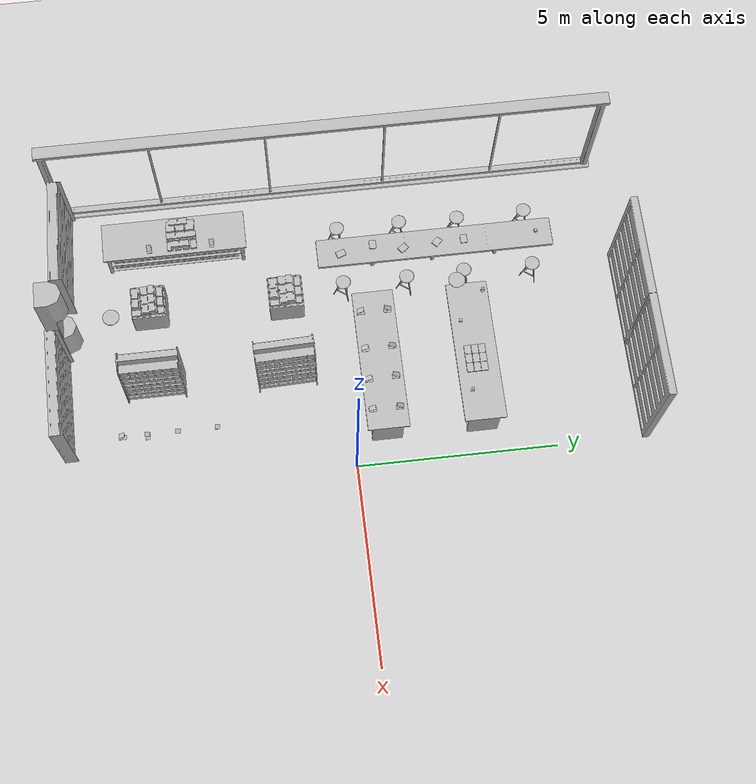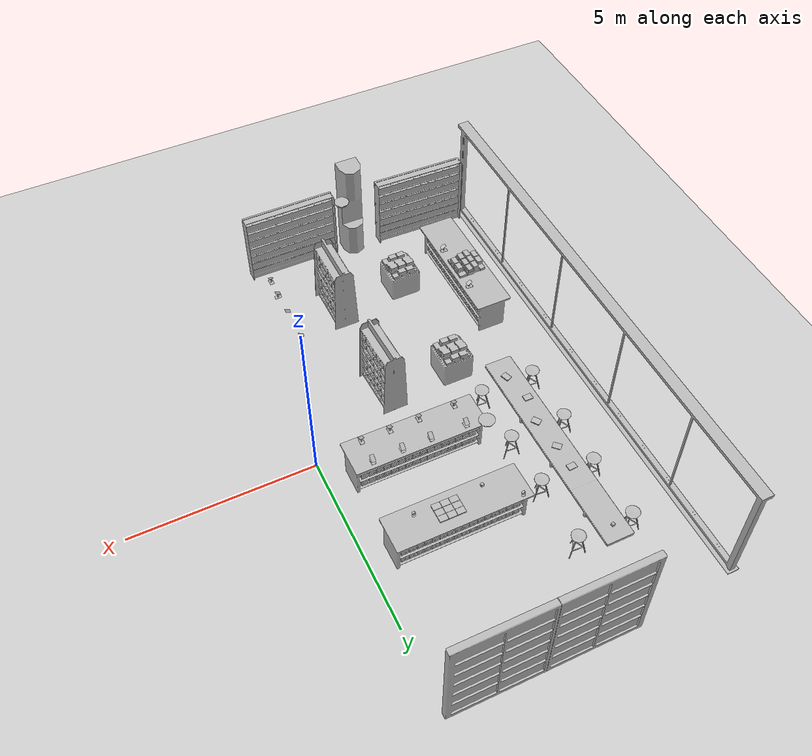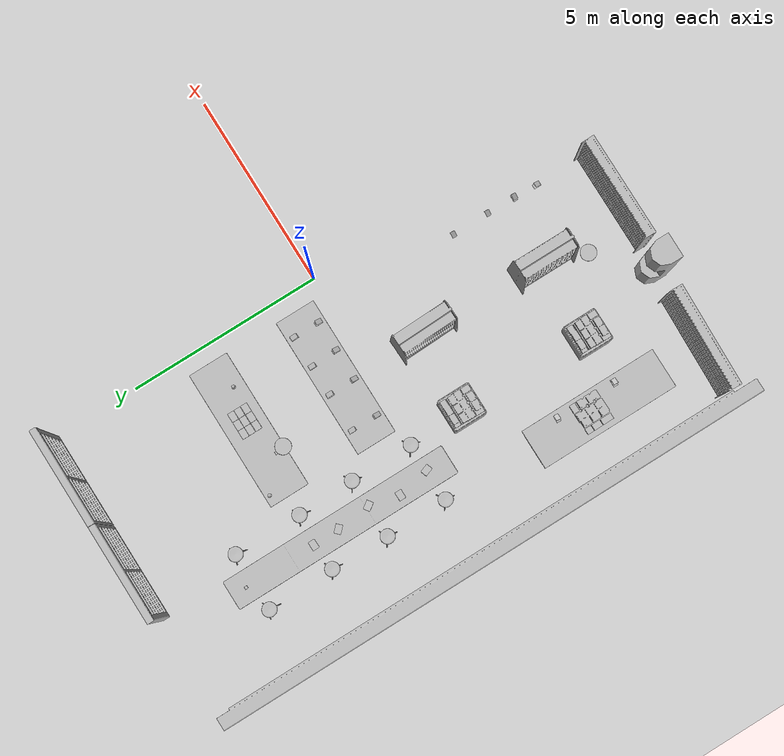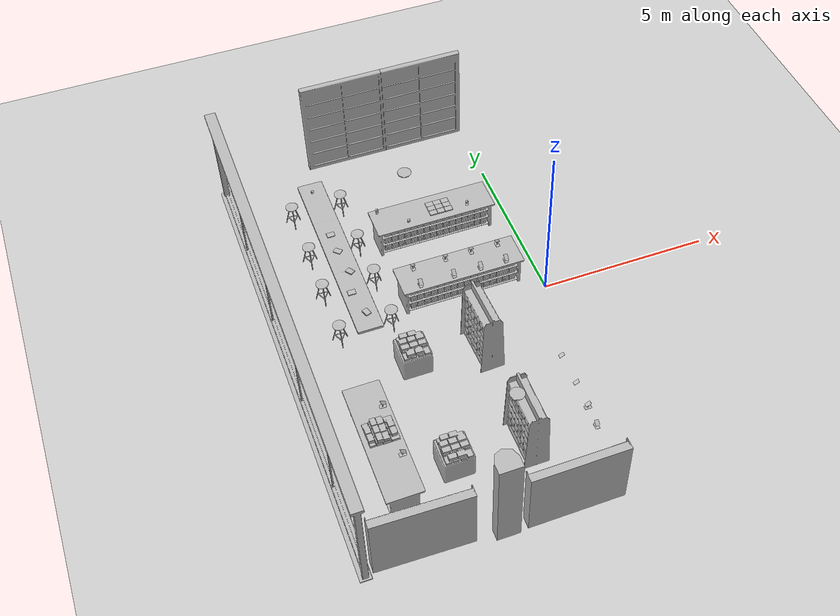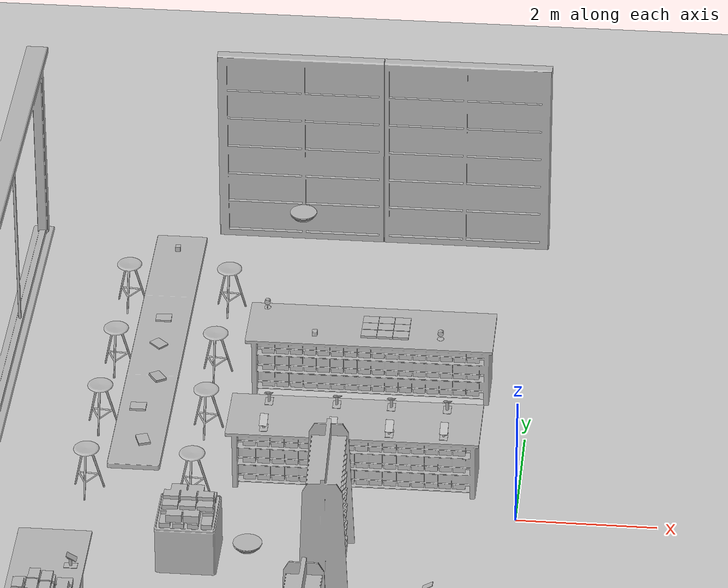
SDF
<sdf version="1.8">
 <world name="bookstore">
  <model name="ground_plane">
   <static>true</static>
   <link name="link">
    <collision name="collision">
     <geometry><plane><normal>0 0 1</normal><size>100 100</size></plane></geometry>
    </collision>
    <visual name="visual">
     <geometry><plane><normal>0 0 1</normal><size>100 100</size></plane></geometry>
     <material>
      <ambient>0.8 0.8 0.8 1</ambient>
      <diffuse>0.8 0.8 0.8 1</diffuse>
      <specular>0.8 0.8 0.8 1</specular>
     </material>
    </visual>
   </link>
  </model>
  <include>
   <name>BookE_01_002</name>
   <uri>file://aws_bookstore/models/aws_robomaker_retail_BookE_01</uri>
   <pose>-5.414000 3.330672 0.934015 -0.000001 -0.000001 -1.541094</pose>
   <static>true</static>
  </include>
  <include>
   <name>BookE_01_006</name>
   <uri>file://aws_bookstore/models/aws_robomaker_retail_BookE_01</uri>
   <pose>-1.889425 3.346395 1.054941 0 0 1.568157</pose>
   <static>true</static>
  </include>
  <include>
   <name>BookE_01_007</name>
   <uri>file://aws_bookstore/models/aws_robomaker_retail_BookE_01</uri>
   <pose>-2.123726 3.346395 1.054941 0 0 1.568157</pose>
   <static>true</static>
  </include>
  <include>
   <name>BookE_01_008</name>
   <uri>file://aws_bookstore/models/aws_robomaker_retail_BookE_01</uri>
   <pose>-5.315121 1.771952 0.955242 3.141243 -0.072268 -2.526906</pose>
   <static>true</static>
  </include>
  <include>
   <name>BookE_01_010</name>
   <uri>file://aws_bookstore/models/aws_robomaker_retail_BookE_01</uri>
   <pose>-5.503415 1.012063 0.941463 0 0 -1.568440</pose>
   <static>true</static>
  </include>
  <include>
   <name>BookE_01_012</name>
   <uri>file://aws_bookstore/models/aws_robomaker_retail_BookE_01</uri>
   <pose>-5.333584 0.186186 0.949316 -0.000001 -0.004549 -2.798485</pose>
   <static>true</static>
  </include>
  <include>
   <name>BookE_01_013</name>
   <uri>file://aws_bookstore/models/aws_robomaker_retail_BookE_01</uri>
   <pose>-5.403906 2.650881 0.931119 0.021204 -0.000001 -2.355751</pose>
   <static>true</static>
  </include>
  <include>
   <name>BookE_01_014</name>
   <uri>file://aws_bookstore/models/aws_robomaker_retail_BookE_01</uri>
   <pose>-1.889425 2.993687 1.054941 0 0 1.568157</pose>
   <static>true</static>
  </include>
  <include>
   <name>BookE_01_015</name>
   <uri>file://aws_bookstore/models/aws_robomaker_retail_BookE_01</uri>
   <pose>-2.123726 2.993687 1.054941 0 0 1.568157</pose>
   <static>true</static>
  </include>
  <include>
   <name>BookE_01_016</name>
   <uri>file://aws_bookstore/models/aws_robomaker_retail_BookE_01</uri>
   <pose>-2.357369 2.993687 1.054941 0 0 1.568157</pose>
   <static>true</static>
  </include>
  <include>
   <name>BookE_01_017</name>
   <uri>file://aws_bookstore/models/aws_robomaker_retail_BookE_01</uri>
   <pose>-1.889425 3.172920 1.054941 0 0 1.568157</pose>
   <static>true</static>
  </include>
  <include>
   <name>BookE_01_018</name>
   <uri>file://aws_bookstore/models/aws_robomaker_retail_BookE_01</uri>
   <pose>-2.123726 3.172920 1.054941 0 0 1.568157</pose>
   <static>true</static>
  </include>
  <include>
   <name>BookE_01_019</name>
   <uri>file://aws_bookstore/models/aws_robomaker_retail_BookE_01</uri>
   <pose>-2.357369 3.172920 1.054941 0 0 1.568157</pose>
   <static>true</static>
  </include>
  <include>
   <name>BookE_01_030</name>
   <uri>file://aws_bookstore/models/aws_robomaker_retail_BookE_01</uri>
   <pose>-2.357369 3.346395 1.054941 0 0 1.568157</pose>
   <static>true</static>
  </include>
  <include>
   <name>BookD_01_002</name>
   <uri>file://aws_bookstore/models/aws_robomaker_retail_BookD_01</uri>
   <pose>-4.509612 -1.312536 0.804482 0 0 -0.000004</pose>
   <static>true</static>
  </include>
  <include>
   <name>BookF_01_003</name>
   <uri>file://aws_bookstore/models/aws_robomaker_retail_BookF_01</uri>
   <pose>-4.604931 -4.772141 0.804483 0.000004 0 0</pose>
   <static>true</static>
  </include>
  <include>
   <name>BookD_01_003</name>
   <uri>file://aws_bookstore/models/aws_robomaker_retail_BookD_01</uri>
   <pose>-6.235609 -3.785181 1.038157 0.000008 0 1.580378</pose>
   <static>true</static>
  </include>
  <include>
   <name>BookshelfA_01_003</name>
   <uri>file://aws_bookstore/models/aws_robomaker_retail_BookshelfA_01</uri>
   <pose>-2.554493 -1.487456 0.006337 0.001313 -0.001987 0.031824</pose>
   <static>true</static>
  </include>
  <include>
   <name>BookshelfA_01_004</name>
   <uri>file://aws_bookstore/models/aws_robomaker_retail_BookshelfA_01</uri>
   <pose>-2.608578 -4.761649 0.003411 0 0 0</pose>
   <static>true</static>
  </include>
  <include>
   <name>BookshelfB_01_001</name>
   <uri>file://aws_bookstore/models/aws_robomaker_retail_BookshelfB_01</uri>
   <pose>-6.189675 -6.785646 -0.008942 0.003533 0.000121 -0.032073</pose>
   <static>true</static>
  </include>
  <include>
   <name>BookshelfB_01_002</name>
   <uri>file://aws_bookstore/models/aws_robomaker_retail_BookshelfB_01</uri>
   <pose>-2.209411 -6.971459 0.017074 -0.000128 -0.000252 0.000364</pose>
   <static>true</static>
  </include>
  <include>
   <name>BookshelfC_01_003</name>
   <uri>file://aws_bookstore/models/aws_robomaker_retail_BookshelfC_01</uri>
   <pose>-4.517110 -1.310229 0.045908 0 0 0</pose>
   <static>true</static>
  </include>
  <include>
   <name>BookshelfC_01_004</name>
   <uri>file://aws_bookstore/models/aws_robomaker_retail_BookshelfC_01</uri>
   <pose>-4.614360 -4.761649 0.045908 0 0 0</pose>
   <static>true</static>
  </include>
  <include>
   <name>ChairB_01_009</name>
   <uri>file://aws_bookstore/models/aws_robomaker_retail_ChairB_01</uri>
   <pose>-4.602947 5.021919 0.030259 -0.001073 -0.001935 0.001439</pose>
   <static>true</static>
  </include>
  <include>
   <name>ChairB_01_010</name>
   <uri>file://aws_bookstore/models/aws_robomaker_retail_ChairB_01</uri>
   <pose>-6.109693 5.026245 0.027274 -0.001422 -0.002424 0.000176</pose>
   <static>true</static>
  </include>
  <include>
   <name>ChairB_01_011</name>
   <uri>file://aws_bookstore/models/aws_robomaker_retail_ChairB_01</uri>
   <pose>-4.616166 3.276753 0.0321 -0.001068 -0.001938 0.000117</pose>
   <static>true</static>
  </include>
  <include>
   <name>ChairB_01_012</name>
   <uri>file://aws_bookstore/models/aws_robomaker_retail_ChairB_01</uri>
   <pose>-6.090762 3.293415 0.029216 -0.001072 -0.001936 0.000119</pose>
   <static>true</static>
  </include>
  <include>
   <name>ChairB_01_013</name>
   <uri>file://aws_bookstore/models/aws_robomaker_retail_ChairB_01</uri>
   <pose>-4.589604 1.815766 0.032459 0.001362 -0.001944 0.000145</pose>
   <static>true</static>
  </include>
  <include>
   <name>ChairB_01_014</name>
   <uri>file://aws_bookstore/models/aws_robomaker_retail_ChairB_01</uri>
   <pose>-6.130103 1.798599 0.02944 0.001362 -0.001946 0.000105</pose>
   <static>true</static>
  </include>
  <include>
   <name>ChairB_01_015</name>
   <uri>file://aws_bookstore/models/aws_robomaker_retail_ChairB_01</uri>
   <pose>-4.607505 0.203637 0.030218 0.001362 -0.001944 0.000163</pose>
   <static>true</static>
  </include>
  <include>
   <name>ChairB_01_016</name>
   <uri>file://aws_bookstore/models/aws_robomaker_retail_ChairB_01</uri>
   <pose>-6.121492 0.195027 0.027272 0.001357 -0.001950 0.003291</pose>
   <static>true</static>
  </include>
  <include>
   <name>ColumnB_01_002</name>
   <uri>file://aws_bookstore/models/aws_robomaker_retail_ColumnB_01</uri>
   <pose>-4.076233 -6.860710 0.017511 0.001895 -0.000628 -0.003755</pose>
   <static>true</static>
  </include>
  <include>
   <name>SecurityCamera_01_001</name>
   <uri>file://aws_bookstore/models/aws_robomaker_retail_SecurityCamera_01</uri>
   <pose>-1.308807 2.973710 1.037756 -0.004006 -0.000097 -0.010660</pose>
   <static>true</static>
  </include>
  <include>
   <name>SecurityCamera_01_002</name>
   <uri>file://aws_bookstore/models/aws_robomaker_retail_SecurityCamera_01</uri>
   <pose>-3.904507 3.590531 1.037756 0 0 3.050913</pose>
   <static>true</static>
  </include>
  <include>
   <name>DeskB_01_002</name>
   <uri>file://aws_bookstore/models/aws_robomaker_retail_DeskB_01</uri>
   <pose>-5.400709 2.580536 -0.181282 0 -0 0</pose>
   <static>true</static>
  </include>
  <include>
   <name>DeskA_01_001</name>
   <uri>file://aws_bookstore/models/aws_robomaker_retail_DeskA_01</uri>
   <pose>-2.340694 3.200118 0.014921 0.000124 -0.000010 0.000376</pose>
   <static>true</static>
  </include>
  <include>
   <name>DeskA_01_002</name>
   <uri>file://aws_bookstore/models/aws_robomaker_retail_DeskA_01</uri>
   <pose>-2.369938 0.836099 0.00876 -0.000772 -0.001938 0.000017</pose>
   <static>true</static>
  </include>
  <include>
   <name>DeskA_01_003</name>
   <uri>file://aws_bookstore/models/aws_robomaker_retail_DeskA_01</uri>
   <pose>-6.254654 -3.979197 -0.004603 0.001948 0.001361 -1.569567</pose>
   <static>true</static>
  </include>
  <include>
   <name>DoorB_01_001</name>
   <uri>file://aws_bookstore/models/aws_robomaker_retail_DoorB_01</uri>
   <pose>-2.492457 7.219370 -0.035203 0 -0 0</pose>
   <static>true</static>
  </include>
  <include>
   <name>TabletB_01_004</name>
   <uri>file://aws_bookstore/models/aws_robomaker_retail_TabletB_01</uri>
   <pose>-1.036580 -5.570730 1.184718 0.550862 -0.007302 0.000000</pose>
   <static>true</static>
  </include>
  <include>
   <name>TabletB_01_008</name>
   <uri>file://aws_bookstore/models/aws_robomaker_retail_TabletB_01</uri>
   <pose>-1.003855 -4.964849 1.184718 0.512461 -0.058405 -1.604103</pose>
   <static>true</static>
  </include>
  <include>
   <name>TabletB_01_009</name>
   <uri>file://aws_bookstore/models/aws_robomaker_retail_TabletB_01</uri>
   <pose>-1.003855 -4.224020 1.184718 0.512461 -0.058405 -1.604103</pose>
   <static>true</static>
  </include>
  <include>
   <name>TabletB_01_010</name>
   <uri>file://aws_bookstore/models/aws_robomaker_retail_TabletB_01</uri>
   <pose>-1.003855 -3.275521 1.184718 0.512461 -0.058405 -1.604103</pose>
   <static>true</static>
  </include>
  <include>
   <name>TabletB_01_011</name>
   <uri>file://aws_bookstore/models/aws_robomaker_retail_TabletB_01</uri>
   <pose>-5.915050 -3.031740 1.184718 0.518384 0.023341 1.564511</pose>
   <static>true</static>
  </include>
  <include>
   <name>TabletB_01_012</name>
   <uri>file://aws_bookstore/models/aws_robomaker_retail_TabletB_01</uri>
   <pose>-5.915050 -4.612402 1.184718 0.518384 0.023341 1.564511</pose>
   <static>true</static>
  </include>
  <include>
   <name>Tablet_01_001</name>
   <uri>file://aws_bookstore/models/aws_robomaker_retail_Tablet_01</uri>
   <pose>-1.846095 0.489109 1.180551 0.579329 0.041534 -0.007936</pose>
   <static>true</static>
  </include>
  <include>
   <name>Tablet_01_002</name>
   <uri>file://aws_bookstore/models/aws_robomaker_retail_Tablet_01</uri>
   <pose>-2.650150 0.489109 1.180551 0.579329 0.041534 -0.007936</pose>
   <static>true</static>
  </include>
  <include>
   <name>Tablet_01_003</name>
   <uri>file://aws_bookstore/models/aws_robomaker_retail_Tablet_01</uri>
   <pose>-1.069270 0.489109 1.180551 0.579329 0.041534 -0.007936</pose>
   <static>true</static>
  </include>
  <include>
   <name>Tablet_01_004</name>
   <uri>file://aws_bookstore/models/aws_robomaker_retail_Tablet_01</uri>
   <pose>-3.639330 0.489109 1.180551 0.579329 0.041534 -0.007936</pose>
   <static>true</static>
  </include>
  <include>
   <name>Tablet_01_005</name>
   <uri>file://aws_bookstore/models/aws_robomaker_retail_Tablet_01</uri>
   <pose>-1.072680 1.163816 1.177895 0.513308 -0.000001 3.110062</pose>
   <static>true</static>
  </include>
  <include>
   <name>Tablet_01_006</name>
   <uri>file://aws_bookstore/models/aws_robomaker_retail_Tablet_01</uri>
   <pose>-1.876690 1.163816 1.177895 0.513308 -0.000001 3.110062</pose>
   <static>true</static>
  </include>
  <include>
   <name>Tablet_01_007</name>
   <uri>file://aws_bookstore/models/aws_robomaker_retail_Tablet_01</uri>
   <pose>-2.649670 1.163816 1.177895 0.513308 -0.000001 3.110062</pose>
   <static>true</static>
  </include>
  <include>
   <name>Tablet_01_008</name>
   <uri>file://aws_bookstore/models/aws_robomaker_retail_Tablet_01</uri>
   <pose>-3.636550 1.163816 1.177895 0.513308 -0.000001 3.110062</pose>
   <static>true</static>
  </include>
  <include>
   <name>Holder_01_003</name>
   <uri>file://aws_bookstore/models/aws_robomaker_retail_Holder_01</uri>
   <pose>-1.035840 -5.571191 1.037756 0 -0 0</pose>
   <static>true</static>
  </include>
  <include>
   <name>Holder_01_005</name>
   <uri>file://aws_bookstore/models/aws_robomaker_retail_Holder_01</uri>
   <pose>-1.846620 0.495602 1.037756 0 -0 0</pose>
   <static>true</static>
  </include>
  <include>
   <name>Holder_01_006</name>
   <uri>file://aws_bookstore/models/aws_robomaker_retail_Holder_01</uri>
   <pose>-2.647810 0.495602 1.037756 0 -0 0</pose>
   <static>true</static>
  </include>
  <include>
   <name>Holder_01_007</name>
   <uri>file://aws_bookstore/models/aws_robomaker_retail_Holder_01</uri>
   <pose>-1.072420 0.495602 1.037756 0 -0 0</pose>
   <static>true</static>
  </include>
  <include>
   <name>Holder_01_008</name>
   <uri>file://aws_bookstore/models/aws_robomaker_retail_Holder_01</uri>
   <pose>-3.639583 0.495602 1.037756 0 -0 0</pose>
   <static>true</static>
  </include>
  <include>
   <name>Holder_01_009</name>
   <uri>file://aws_bookstore/models/aws_robomaker_retail_Holder_01</uri>
   <pose>-1.072932 1.160829 1.037756 0 -0 -3.130149</pose>
   <static>true</static>
  </include>
  <include>
   <name>Holder_01_010</name>
   <uri>file://aws_bookstore/models/aws_robomaker_retail_Holder_01</uri>
   <pose>-1.874890 1.160829 1.037756 0 -0 -3.130149</pose>
   <static>true</static>
  </include>
  <include>
   <name>Holder_01_011</name>
   <uri>file://aws_bookstore/models/aws_robomaker_retail_Holder_01</uri>
   <pose>-2.659160 1.160829 1.037756 0 -0 -3.130149</pose>
   <static>true</static>
  </include>
  <include>
   <name>Holder_01_012</name>
   <uri>file://aws_bookstore/models/aws_robomaker_retail_Holder_01</uri>
   <pose>-3.631300 1.160829 1.037756 0 -0 -3.130149</pose>
   <static>true</static>
  </include>
  <include>
   <name>Holder_01_016</name>
   <uri>file://aws_bookstore/models/aws_robomaker_retail_Holder_01</uri>
   <pose>-1.001700 -4.961520 1.037756 0 0 -1.588645</pose>
   <static>true</static>
  </include>
  <include>
   <name>Holder_01_019</name>
   <uri>file://aws_bookstore/models/aws_robomaker_retail_Holder_01</uri>
   <pose>-5.929110 -3.032790 1.037756 0 -0 1.550000</pose>
   <static>true</static>
  </include>
  <include>
   <name>Holder_01_020</name>
   <uri>file://aws_bookstore/models/aws_robomaker_retail_Holder_01</uri>
   <pose>-5.929110 -4.603640 1.037756 0 -0 1.550000</pose>
   <static>true</static>
  </include>
  <include>
   <name>LightA_01_004</name>
   <uri>file://aws_bookstore/models/aws_robomaker_retail_LightA_01</uri>
   <pose>-3.210668 -5.383710 3.150328 0 -0 0</pose>
   <static>true</static>
  </include>
  <include>
   <name>LightA_01_005</name>
   <uri>file://aws_bookstore/models/aws_robomaker_retail_LightA_01</uri>
   <pose>-3.271001 2.685925 3.150328 0 -0 0</pose>
   <static>true</static>
  </include>
  <include>
   <name>MagicCube_01_002</name>
   <uri>file://aws_bookstore/models/aws_robomaker_retail_MagicCube_01</uri>
   <pose>-5.383672 5.177522 0.968608 1.564128 -0.000001 -1.555410</pose>
   <static>true</static>
  </include>
  <include>
   <name>MagicCube_01_003</name>
   <uri>file://aws_bookstore/models/aws_robomaker_retail_MagicCube_01</uri>
   <pose>-3.146512 2.928458 1.035654 0 0 0</pose>
   <static>true</static>
  </include>
  <include>
   <name>ShopWindow_01_001</name>
   <uri>file://aws_bookstore/models/aws_robomaker_retail_ShopWindow_01</uri>
   <pose>-7.738156 0.015960 -0.180092 0 -0 0</pose>
   <static>true</static>
  </include>
 </world>
</sdf>
